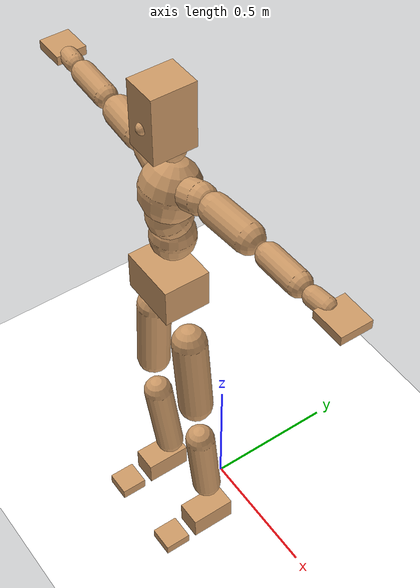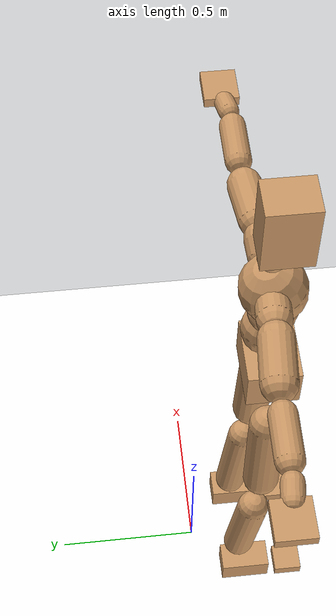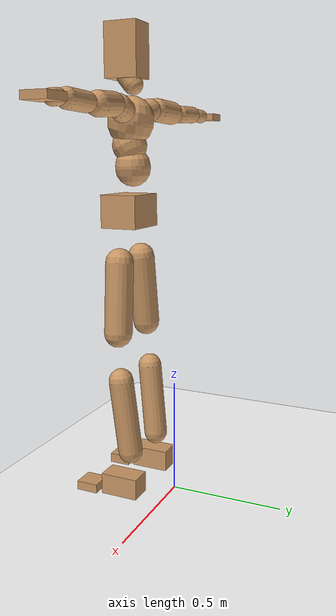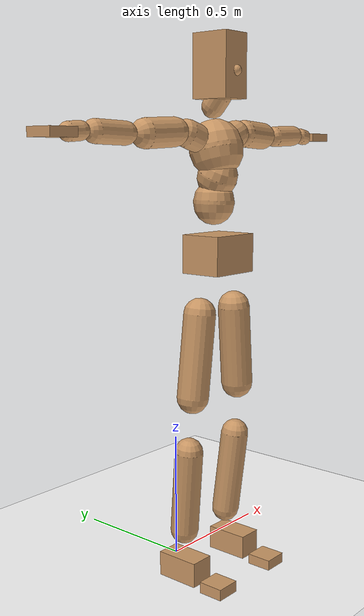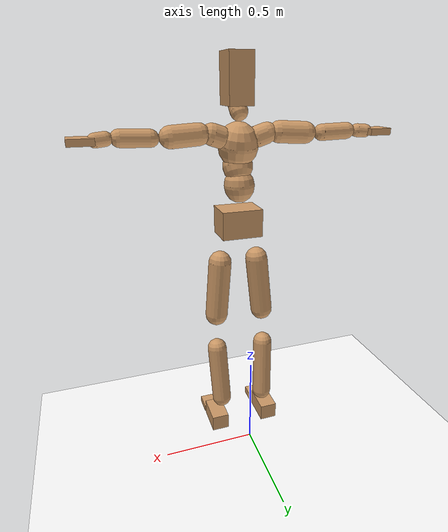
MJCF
<mujoco model="humanoid">
  <option integrator="implicitfast" />

  <visual>
    <global offwidth="1280" offheight="960" />
    <headlight active="1" ambient="0.34 0.34 0.34" diffuse="0.5 0.5 0.5" />
  </visual>

  <default>
    <joint damping="2" stiffness="2" armature="0.01" limited="true" solimplimit="0 .99 .01" />
    <geom condim="1" friction="0.7 0.005 0.0001" solimp=".99 .99 .003" solref="0.015 1" margin="0.001" rgba="0.8 0.6 .4 1" />
    <default class="smplcontact">
      <geom condim="3" friction="1. 0.005 0.0001" solref="0.015 1" solimp="0.98 0.98 0.001" priority="1" />
    </default>
    <default class="stiff_medium">
      <joint stiffness="10" />
    </default>
    <default class="stiff_medium_higher">
      <joint stiffness="50" />
    </default>
    <default class="stiff_high">
      <joint stiffness="100" />
    </default>
  </default>

  <asset>
    <texture type="skybox" builtin="gradient" rgb1="0.99 0.99 0.99" rgb2="0.608 0.828 0.892" width="100" />
    <texture builtin="flat" height="1278" mark="cross" markrgb="1 1 1" name="texgeom" random="0.01" rgb1="0.8 0.6 0.4" rgb2="0.8 0.6 0.4" type="cube" width="127" />
    <texture name="texplane" type="2d" builtin="checker" markrgb="1 1 1" rgb1="0.756 0.772 0.76" rgb2="0.6 0.6 0.6" width="100" height="100" />
    <material name="MatPlane" reflectance="0.5" texture="texplane" texrepeat="1 1" texuniform="true" />
    <material name="geom" texture="texgeom" texuniform="true" />
  </asset>

  <worldbody>
    <light name="tracking_light" pos="0 0 7" dir="0 0 -1" directional="true" cutoff="100" exponent="1" diffuse="1 1 1" specular="0.1 0.1 0.1" mode="trackcom" />
    <camera name="back" pos="0 3 2.4" xyaxes="-1 0 0 0 -1 2" mode="trackcom" />
    <camera name="side" pos="-3 0 2.4" xyaxes="0 -1 0 1 0 2" mode="trackcom" />
    <camera name="front_side" pos="-2.8 -2.8 0.8" xyaxes="0.5 -0.5 0 0.1 0.1 1" mode="trackcom" />
    <geom condim="3" name="floor" pos="0 0 0" rgba="1 1 1 1" size="100 100 .2" type="plane" material="MatPlane" />
    <body name="Pelvis" pos="-0.0018 -0.2233 1.27986" euler="90 0 0">
      <site name="Pelvis" size="0.01" />
      <freejoint name="Pelvis" />
      <geom type="box" pos="-0.0000 -0.0121 -0.0055" size="0.1069 0.0722 0.083" quat="1.0000 0.0000 0.0000 0.0000" density="3165.830099" name="Pelvis" />
      <body name="L_Hip" pos="0.0955625 -0.125675 -0.00935">
        <joint name="L_Hip_x" type="hinge" pos="0 0 0" axis="1 0 0" stiffness="17.19464815217392" range="-160.0 22.92" class="stiff_medium" damping="29.626266823599458" armature="0.022687051049198846"/>
        <joint name="L_Hip_y" type="hinge" pos="0 0 0" axis="0 1 0" stiffness="17.095245217391305" range="-70.0 70.0" class="stiff_medium" damping="16.759081040028263" armature="0.016429527259457143"/>
        <joint name="L_Hip_z" type="hinge" pos="0 0 0" axis="0 0 1" stiffness="17.111722391304347" range="-28.65 90.0" class="stiff_medium" damping="19.707086393727305" armature="0.02269609366308965"/>
        <geom type="capsule" density="2040.816327" fromto="0.0094875 -0.103125 -0.0012375 0.037675 -0.412775 -0.00495" size="0.0615" name="L_Hip" />
        <body name="L_Knee" pos="0.0471625 -0.5159 -0.0061875">
          <joint name="L_Knee_x" type="hinge" pos="0 0 0" axis="1 0 0" range="-5.16 171.89" damping="15.051360594298108" armature="0.021343797365827893" stiffness="3.316880717391304"/>
          <joint name="L_Knee_y" type="hinge" pos="0 0 0" axis="0 1 0" range="-4.58 6.88" damping="12.951808701017505" armature="0.015441578364462112" stiffness="3.3948389347826087"/>
          <joint name="L_Knee_z" type="hinge" pos="0 0 0" axis="0 0 1" range="-6.88 4.58" damping="15.016338430734729" armature="0.021384230246159514" stiffness="3.295220608695652"/>
          <geom type="capsule" density="1234.567901" fromto="-0.0037125 -0.10945 -0.0119625 -0.0149875 -0.4378 -0.048125" size="0.0541" name="L_Knee" />
          <body name="L_Ankle" pos="-0.0187 -0.54725 -0.0600875">
            <joint name="L_Ankle_x" type="hinge" pos="0 0 0" axis="1 0 0" range="-45.84 45.84" class="stiff_medium" damping="8.859849404560132" armature="0.015857944517404327" stiffness="13.750018586956523"/>
            <joint name="L_Ankle_y" type="hinge" pos="0 0 0" axis="0 1 0" range="-74.48 22.92" class="stiff_medium" damping="4.399379435502066" armature="0.015640018623433522" stiffness="13.750011630434784"/>
            <joint name="L_Ankle_z" type="hinge" pos="0 0 0" axis="0 0 1" range="-4.58 4.58" class="stiff_medium" damping="8.38783641411414" armature="0.014213292870694776" stiffness="13.75"/>
            <geom type="box" pos="0.0320375 -0.0328625 0.033275" size="0.0483 0.0464 0.085" quat="1.0000 0.0000 0.0000 0.0000" density="449.071558" name="L_Ankle" class="smplcontact" />
            <body name="L_Toe" pos="0.0363 -0.076725 0.164038">
              <joint name="L_Toe_x" type="hinge" pos="0 0 0" axis="1 0 0" range="-91.67 22.92" armature="0.013386048586151958" damping="2.7133607799891957" stiffness="2.75"/>
              <joint name="L_Toe_y" type="hinge" pos="0 0 0" axis="0 1 0" range="-4.58 4.58" armature="0.012385744586589299" damping="2.610011402776646" stiffness="2.75"/>
              <joint name="L_Toe_z" type="hinge" pos="0 0 0" axis="0 0 1" range="-4.58 4.58" armature="0.010363183740582555" damping="2.387415141386266" stiffness="2.75"/>
              <geom type="box" pos="-0.004125 0.0075625 0.0341" size="0.0478 0.02 0.0496" quat="1.0000 0.0000 0.0000 0.0000" density="423.206892" name="L_Toe" class="smplcontact" />
            </body>
          </body>
        </body>
      </body>
      <body name="R_Hip" pos="-0.0930875 -0.124437 -0.0059125">
        <joint name="R_Hip_x" type="hinge" pos="0 0 0" axis="1 0 0" stiffness="17.19464815217392" range="-160.0 22.92" class="stiff_medium" damping="29.626266823599458" armature="0.022687051049198846"/>
        <joint name="R_Hip_y" type="hinge" pos="0 0 0" axis="0 1 0" stiffness="17.095245217391305" range="-70.0 70.0" class="stiff_medium" damping="16.759081040028263" armature="0.016429527259457143"/>
        <joint name="R_Hip_z" type="hinge" pos="0 0 0" axis="0 0 1" stiffness="17.111722391304347" range="-90.0 28.65" class="stiff_medium" damping="19.707086393727305" armature="0.02269609366308965"/>
        <geom type="capsule" density="2040.816327" fromto="-0.0105875 -0.105188 -0.002475 -0.042075 -0.420887 -0.0097625" size="0.0606" name="R_Hip" />
        <body name="R_Knee" pos="-0.0526625 -0.526075 -0.0122375">
          <joint name="R_Knee_x" type="hinge" pos="0 0 0" axis="1 0 0" range="-5.16 171.89" damping="15.051360594298108" armature="0.021343797365827893" stiffness="3.316880717391304"/>
          <joint name="R_Knee_y" type="hinge" pos="0 0 0" axis="0 1 0" range="-6.88 4.58" damping="12.951808701017505" armature="0.015441578364462112" stiffness="3.3948389347826087"/>
          <joint name="R_Knee_z" type="hinge" pos="0 0 0" axis="0 0 1" range="-4.58 6.88" damping="15.016338430734729" armature="0.021384230246159514" stiffness="3.295220608695652"/>
          <geom type="capsule" density="1234.567901" fromto="0.0044 -0.109587 -0.0116875 0.017325 -0.438213 -0.046475" size="0.0541" name="R_Knee" />
          <body name="R_Ankle" pos="0.021725 -0.5478 -0.0581625">
            <joint name="R_Ankle_x" type="hinge" pos="0 0 0" axis="1 0 0" range="-45.84 45.84" class="stiff_medium" damping="8.859849404560132" armature="0.015857944517404327" stiffness="13.750018586956523"/>
            <joint name="R_Ankle_y" type="hinge" pos="0 0 0" axis="0 1 0" range="-22.92 74.48" class="stiff_medium" damping="4.399379435502066" armature="0.015640018623433522" stiffness="13.750011630434784"/>
            <joint name="R_Ankle_z" type="hinge" pos="0 0 0" axis="0 0 1" range="-4.58 4.58" class="stiff_medium" damping="8.38783641411414" armature="0.014213292870694776" stiffness="13.75"/>
            <geom type="box" pos="-0.02915 -0.023925 0.0352" size="0.0483 0.0478 0.0865" quat="1.0000 0.0000 0.0000 0.0000" density="434.700981" name="R_Ankle" class="smplcontact" />
            <body name="R_Toe" pos="-0.034925 -0.0661375 0.169538">
              <joint name="R_Toe_x" type="hinge" pos="0 0 0" axis="1 0 0" range="-91.67 22.92" armature="0.013386048586151958" damping="2.7133607799891957" stiffness="2.75"/>
              <joint name="R_Toe_y" type="hinge" pos="0 0 0" axis="0 1 0" range="-4.58 4.58" armature="0.012385744586589299" damping="2.610011402776646" stiffness="2.75"/>
              <joint name="R_Toe_z" type="hinge" pos="0 0 0" axis="0 0 1" range="-4.58 4.58" armature="0.010363183740582555" damping="2.387415141386266" stiffness="2.75"/>
              <geom type="box" pos="0.005775 0.0061875 0.0312125" size="0.0479 0.0216 0.0493" quat="1.0000 0.0000 0.0000 0.0000" density="407.384095" name="R_Toe" class="smplcontact" />
            </body>
          </body>
        </body>
      </body>
      <body name="Torso" pos="-0.0025 0.109 -0.0267">
        <joint name="Torso_x" type="hinge" pos="0 0 0" axis="1 0 0" range="-25.78 57.3" class="stiff_medium" damping="14.368828481187112" armature="0.009518929822817202" stiffness="9.63989"/>
        <joint name="Torso_y" type="hinge" pos="0 0 0" axis="0 1 0" range="-57.3 57.3" class="stiff_high" damping="17.03261776899825" armature="0.00748954170337838" stiffness="96.83839130434782"/>
        <joint name="Torso_z" type="hinge" pos="0 0 0" axis="0 0 1" range="-34.38 34.38" class="stiff_high" damping="18.535401574096333" armature="0.008825226346331873" stiffness="97.32359772727271"/>
        <geom type="capsule" density="2040.816327" fromto="0.0025 0.0608 0.0005 0.003 0.0743 0.0006" size="0.0769" name="Torso" />
        <body name="Spine" pos="0.0055 0.1352 0.0011">
          <joint name="Spine_x" type="hinge" pos="0 0 0" axis="1 0 0" stiffness="9.579701739130435" range="-25.78 57.3" class="stiff_medium" damping="14.264620493957937" armature="0.009440303089812757"/>
          <joint name="Spine_y" type="hinge" pos="0 0 0" axis="0 1 0" stiffness="9.580887826086956" range="-57.3 57.3" class="stiff_high" damping="6.768786682343357" armature="0.007471983870182018"/>
          <joint name="Spine_z" type="hinge" pos="0 0 0" axis="0 0 1" stiffness="19.031785652173912" range="-34.38 34.38" class="stiff_high" damping="10.69521045127154" armature="0.008347696197381863"/>
          <geom type="capsule" density="2040.816327" fromto="0.0007 0.0238 0.0114 0.0008 0.0291 0.014" size="0.0755" name="Spine" />
          <body name="Chest" pos="0.0015 0.0529 0.0254">
            <joint name="Chest_x" type="hinge" pos="0 0 0" axis="1 0 0" stiffness="9.409094782608697" range="-25.78 57.3" class="stiff_medium" damping="14.104409531967361" armature="0.009396788619791433"/>
            <joint name="Chest_y" type="hinge" pos="0 0 0" axis="0 1 0" stiffness="8.884800227272727" range="-57.3 57.3" class="stiff_high" damping="6.515670116194001" armature="0.007466043829259932"/>
            <joint name="Chest_z" type="hinge" pos="0 0 0" axis="0 0 1" stiffness="18.982618260869568" range="-34.38 34.38" class="stiff_high" damping="10.547007863759628" armature="0.008138979020284567"/>
            <geom type="capsule" density="2040.816327" fromto="-0.0009 0.0682 -0.0173 -0.001 0.0833 -0.0212" size="0.1002" name="Chest" />
            <body name="Neck" pos="-0.0028 0.2139 -0.0429">
              <joint name="Neck_x" type="hinge" pos="0 0 0" axis="1 0 0" range="-28.65 57.3" class="stiff_medium_higher" damping="10.0" armature="0.01" stiffness="50.0"/>
              <joint name="Neck_y" type="hinge" pos="0 0 0" axis="0 1 0" range="-40.11 40.11" class="stiff_medium_higher" damping="10.0" armature="0.010000000000000002" stiffness="50.0"/>
              <joint name="Neck_z" type="hinge" pos="0 0 0" axis="0 0 1" range="-40.11 40.11" class="stiff_medium_higher" damping="10.000000000000014" armature="0.01000000000000003" stiffness="50.0"/>
              <geom type="capsule" density="1000" fromto="0.001 0.013 0.0103 0.0041 0.052 0.0411" size="0.0436" name="Neck" />
              <body name="Head" pos="0.0052 0.065 0.0513">
                <joint name="Head_x" type="hinge" pos="0 0 0" axis="1 0 0" range="-28.65 57.3" class="stiff_medium_higher" damping="2.000000000000002" armature="0.010000000000000023" stiffness="50.0"/>
                <joint name="Head_y" type="hinge" pos="0 0 0" axis="0 1 0" range="-40.11 40.11" class="stiff_medium_higher" damping="2.0" armature="0.010000000000000002" stiffness="50.0"/>
                <joint name="Head_z" type="hinge" pos="0 0 0" axis="0 0 1" range="-40.11 40.11" class="stiff_medium_higher" damping="2.0000000000000058" armature="0.010000000000000061" stiffness="50.0"/>
                <geom type="box" pos="-0.0042 0.0876 -0.0116" size="0.0606 0.1154 0.076" quat="1.0000 0.0000 0.0000 0.0000" density="1018.069894" name="Head" />
                <geom type="capsule" name="nose" size="0.02 0.01" pos="0 0.07 0.05" quat="1 0 0 0" mass="0" contype="0" conaffinity="0" />
              </body>
            </body>
            <body name="L_Thorax" pos="0.069935 0.108009 -0.0302637">
              <joint name="L_Thorax_x" type="hinge" pos="0 0 0" axis="1 0 0" range="-10.89 4.58" class="stiff_medium_higher" damping="16.505477260399463" armature="0.008237289712880574" stiffness="41.34108260869564"/>
              <joint name="L_Thorax_y" type="hinge" pos="0 0 0" axis="0 1 0" range="-28.65 17.19" class="stiff_medium_higher" damping="15.614710169996354" armature="0.00739718175864292" stiffness="41.201362499999995"/>
              <joint name="L_Thorax_z" type="hinge" pos="0 0 0" axis="0 0 1" range="-31.51 40.11" class="stiff_medium_higher" damping="15.614286291485111" armature="0.0073964225804993" stiffness="41.203354347826085"/>
              <geom type="capsule" density="1000" fromto="0.0161525 0.00541375 -0.0015975 0.06461 0.021655 -0.00630125" size="0.0521" name="L_Thorax" />
              <body name="L_Shoulder" pos="0.0807625 0.0270687 -0.00789875">
                <joint name="L_Shoulder_x" type="hinge" pos="0 0 0" axis="1 0 0" range="-97.4 97.4" class="stiff_medium" damping="5.052350459499167" armature="0.008561219507331155" stiffness="8.282258913043478"/>
                <joint name="L_Shoulder_y" type="hinge" pos="0 0 0" axis="0 1 0" range="-108.86 80.21" class="stiff_medium" damping="4.696705326036949" armature="0.007424828192243076" stiffness="8.252731521739129"/>
                <joint name="L_Shoulder_z" type="hinge" pos="0 0 0" axis="0 0 1" range="-97.4 85.94" class="stiff_medium" damping="4.696194705652358" armature="0.007423822707357093" stiffness="8.252054673913044"/>
                <geom type="capsule" density="1000" fromto="0.0460612 -0.0023075 -0.00488125 0.184334 -0.0090525 -0.019525" size="0.0517" name="L_Shoulder" />
                <body name="L_Elbow" pos="0.230395 -0.01136 -0.0244062">
                  <joint name="L_Elbow_x" type="hinge" pos="0 0 0" axis="1 0 0" range="-17.19 4.58" damping="4.357834099746463" armature="0.009089595760700588" stiffness="1.6714246521739127"/>
                  <joint name="L_Elbow_y" type="hinge" pos="0 0 0" axis="0 1 0" range="-180.0 17.19" damping="3.9739810536272118" armature="0.007559999182253766" stiffness="1.6711668913043478"/>
                  <joint name="L_Elbow_z" type="hinge" pos="0 0 0" axis="0 0 1" range="-100.84 4.58" damping="3.9731711614276466" armature="0.0075547215269742085" stiffness="1.6716527826086958"/>
                  <geom type="capsule" density="1000" fromto="0.0441975 0.0015975 -0.0001775 0.176967 0.00639 -0.00079875" size="0.0405" name="L_Elbow" />
                  <body name="L_Wrist" pos="0.221165 0.0079875 -0.001065">
                    <joint name="L_Wrist_x" type="hinge" pos="0 0 0" axis="1 0 0" range="-180.0 22.92" armature="0.009268388983616758" damping="1.7956064308764201" stiffness="1.7393543043478261"/>
                    <joint name="L_Wrist_y" type="hinge" pos="0 0 0" axis="0 1 0" range="-17.19 17.19" armature="0.008039907338787651" damping="1.6695087244197115" stiffness="1.7333902391304346"/>
                    <joint name="L_Wrist_z" type="hinge" pos="0 0 0" axis="0 0 1" range="-22.92 22.92" armature="0.00797078323233518" damping="1.6634253394625034" stiffness="1.7357038695652176"/>
                    <geom type="capsule" density="1000" fromto="0.01491 -0.00142 -0.0026625 0.05964 -0.00576875 -0.01065" size="0.0318" name="L_Wrist" class="smplcontact" />
                    <body name="L_Hand" pos="0.07455 -0.0072775 -0.0132237">
                      <joint name="L_Hand_x" type="hinge" pos="0 0 0" axis="1 0 0" range="-17.19 17.19" armature="0.009907489981019743" damping="1.8754085016113422" stiffness="1.7749990434782612"/>
                      <joint name="L_Hand_y" type="hinge" pos="0 0 0" axis="0 1 0" range="-51.57 51.57" armature="0.008881214164335072" damping="1.7756208292662223" stiffness="1.7749990434782612"/>
                      <joint name="L_Hand_z" type="hinge" pos="0 0 0" axis="0 0 1" range="-91.67 91.67" armature="0.00860764640211085" damping="1.7480597104275561" stiffness="1.7749990000000002"/>
                      <geom type="box" pos="0.0437537 0.0008875 -0.0051475" size="0.0585 0.0158 0.0538" quat="1.0000 0.0000 0.0000 0.0000" density="400.552564" name="L_Hand" class="smplcontact" />
                    </body>
                  </body>
                </body>
              </body>
            </body>
            <body name="R_Thorax" pos="-0.0725975 0.105435 -0.0342575">
              <joint name="R_Thorax_x" type="hinge" pos="0 0 0" axis="1 0 0" range="-10.89 4.58" class="stiff_medium_higher" damping="16.505477260399463" armature="0.008237289712880574" stiffness="41.34108260869564"/>
              <joint name="R_Thorax_y" type="hinge" pos="0 0 0" axis="0 1 0" range="-17.19 28.65" class="stiff_medium_higher" damping="15.614710169996354" armature="0.00739718175864292" stiffness="41.201362499999995"/>
              <joint name="R_Thorax_z" type="hinge" pos="0 0 0" axis="0 0 1" range="-40.11 31.51" class="stiff_medium_higher" damping="15.614286291485111" armature="0.0073964225804993" stiffness="41.203354347826085"/>
              <geom type="capsule" density="1000" fromto="-0.01704 0.00576875 -0.0015975 -0.06816 0.023075 -0.00647875" size="0.0511" name="R_Thorax" />
              <body name="R_Shoulder" pos="-0.0852 0.0289325 -0.00807625">
                <joint name="R_Shoulder_x" type="hinge" pos="0 0 0" axis="1 0 0" range="-97.4 97.4" class="stiff_medium" damping="5.052350459499167" armature="0.008561219507331155" stiffness="8.282258913043478"/>
                <joint name="R_Shoulder_y" type="hinge" pos="0 0 0" axis="0 1 0" range="-80.21 108.86" class="stiff_medium" damping="4.696705326036949" armature="0.007424828192243076" stiffness="8.252731521739129"/>
                <joint name="R_Shoulder_z" type="hinge" pos="0 0 0" axis="0 0 1" range="-85.94 97.4" class="stiff_medium" damping="4.696194705652358" armature="0.007423822707357093" stiffness="8.252054673913044"/>
                <geom type="capsule" density="1000" fromto="-0.0449963 -0.00239625 -0.00381625 -0.180163 -0.00949625 -0.0151763" size="0.0531" name="R_Shoulder" />
                <body name="R_Elbow" pos="-0.225159 -0.0118037 -0.0189925">
                  <joint name="R_Elbow_x" type="hinge" pos="0 0 0" axis="1 0 0" range="-17.19 4.58" damping="4.357834099746463" armature="0.009089595760700588" stiffness="1.6714246521739127"/>
                  <joint name="R_Elbow_y" type="hinge" pos="0 0 0" axis="0 1 0" range="-17.19 180.0" damping="3.9739810536272118" armature="0.007559999182253766" stiffness="1.6711668913043478"/>
                  <joint name="R_Elbow_z" type="hinge" pos="0 0 0" axis="0 0 1" range="-4.58 100.84" damping="3.9731711614276466" armature="0.0075547215269742085" stiffness="1.6716527826086958"/>
                  <geom type="capsule" density="1000" fromto="-0.0453512 0.00142 -0.00097625 -0.181227 0.0055025 -0.003905" size="0.0408" name="R_Elbow" />
                  <body name="R_Wrist" pos="-0.226579 0.0069225 -0.00497">
                    <joint name="R_Wrist_x" type="hinge" pos="0 0 0" axis="1 0 0" range="-180.0 22.92" armature="0.009268388983616758" damping="1.7956064308764201" stiffness="1.7393543043478261"/>
                    <joint name="R_Wrist_y" type="hinge" pos="0 0 0" axis="0 1 0" range="-17.19 17.19" armature="0.008039907338787651" damping="1.6695087244197115" stiffness="1.7333902391304346"/>
                    <joint name="R_Wrist_z" type="hinge" pos="0 0 0" axis="0 0 1" range="-22.92 22.92" armature="0.00797078323233518" damping="1.6634253394625034" stiffness="1.7357038695652176"/>
                    <geom type="capsule" density="1000" fromto="-0.0149987 -0.001065 -0.00186375 -0.0600837 -0.00434875 -0.00736625" size="0.0326" name="R_Wrist" class="smplcontact" />
                    <body name="R_Hand" pos="-0.0750825 -0.00541375 -0.00914125">
                      <joint name="R_Hand_x" type="hinge" pos="0 0 0" axis="1 0 0" range="-17.19 17.19" armature="0.009907489981019743" damping="1.8754085016113422" stiffness="1.7749990434782612"/>
                      <joint name="R_Hand_y" type="hinge" pos="0 0 0" axis="0 1 0" range="-51.57 51.57" armature="0.008881214164335072" damping="1.7756208292662223" stiffness="1.7749990434782612"/>
                      <joint name="R_Hand_z" type="hinge" pos="0 0 0" axis="0 0 1" range="-91.67 91.67" armature="0.00860764640211085" damping="1.7480597104275561" stiffness="1.7749990000000002"/>
                      <geom type="box" pos="-0.0410025 -0.00079875 -0.00701125" size="0.0569 0.0164 0.0546" quat="1.0000 0.0000 0.0000 0.0000" density="403.679611" name="R_Hand" class="smplcontact" />
                    </body>
                  </body>
                </body>
              </body>
            </body>
          </body>
        </body>
      </body>
    </body>
  </worldbody>
  <actuator>
    <general name="L_Hip_x" joint="L_Hip_x" biastype="affine" gainprm="494.0539355695039" biasprm="-370.2433494853903 -309.5036667391305 -3.9501689098132613" ctrllimited="true" ctrlrange="-1 1" forcerange="-619.007333478261 619.007333478261" />
    <general name="L_Hip_y" joint="L_Hip_y" biastype="affine" gainprm="375.944077503908" biasprm="0.0 -307.71441391304353 -3.3518162080056526" ctrllimited="true" ctrlrange="-1 1" forcerange="-615.4288278260871 615.4288278260871" />
    <general name="L_Hip_z" joint="L_Hip_z" biastype="affine" gainprm="318.91969898728996" biasprm="164.90285320581742 -308.0110030434783 -3.9414172787454613" ctrllimited="true" ctrlrange="-1 1" forcerange="-616.0220060869566 616.0220060869566" />
    <general name="L_Knee_x" joint="L_Knee_x" biastype="affine" gainprm="461.2280017867971" biasprm="434.34365850275447 -298.5192645652174 -3.762840148574527" ctrllimited="true" ctrlrange="-1 1" forcerange="-597.0385291304348 597.0385291304348" />
    <general name="L_Knee_y" joint="L_Knee_y" biastype="affine" gainprm="30.555801030120385" biasprm="6.132490608139344 -305.5355041304348 -3.2379521752543763" ctrllimited="true" ctrlrange="-1 1" forcerange="-611.0710082608696 611.0710082608696" />
    <general name="L_Knee_z" joint="L_Knee_z" biastype="affine" gainprm="29.659170053115986" biasprm="-5.95253849233567 -296.5698547826087 -3.7540846076836822" ctrllimited="true" ctrlrange="-1 1" forcerange="-593.1397095652173 593.1397095652173" />
    <general name="L_Ankle_x" joint="L_Ankle_x" biastype="affine" gainprm="99.00742631382712" biasprm="0.0 -123.7501672826087 -2.9532831348533772" ctrllimited="true" ctrlrange="-1 1" forcerange="-247.5003345652174 247.5003345652174" />
    <general name="L_Ankle_y" joint="L_Ankle_y" biastype="affine" gainprm="105.18453800324872" biasprm="-55.68084989165815 -123.75010467391306 -2.932919623668044" ctrllimited="true" ctrlrange="-1 1" forcerange="-247.50020934782611 247.50020934782611" />
    <general name="L_Ankle_z" joint="L_Ankle_z" biastype="affine" gainprm="9.89208986799086" biasprm="0.0 -123.75 -2.79594547137138" ctrllimited="true" ctrlrange="-1 1" forcerange="-247.5 247.5" />
    <general name="L_Toe_x" joint="L_Toe_x" biastype="affine" gainprm="98.99865309808496" biasprm="-59.39573610693202 -99.0 -1.0853443119956783" ctrllimited="true" ctrlrange="-1 1" forcerange="-198.0 198.0" />
    <general name="L_Toe_y" joint="L_Toe_y" biastype="affine" gainprm="7.913671894392689" biasprm="0.0 -99.0 -1.0440045611106583" ctrllimited="true" ctrlrange="-1 1" forcerange="-198.0 198.0" />
    <general name="L_Toe_z" joint="L_Toe_z" biastype="affine" gainprm="7.913671894392689" biasprm="0.0 -99.0 -0.9549660565545065" ctrllimited="true" ctrlrange="-1 1" forcerange="-198.0 198.0" />
    <general name="R_Hip_x" joint="R_Hip_x" biastype="affine" gainprm="494.0539355695039" biasprm="-370.2433494853903 -309.5036667391305 -3.9501689098132613" ctrllimited="true" ctrlrange="-1 1" forcerange="-619.007333478261 619.007333478261" />
    <general name="R_Hip_y" joint="R_Hip_y" biastype="affine" gainprm="375.944077503908" biasprm="0.0 -307.71441391304353 -3.3518162080056526" ctrllimited="true" ctrlrange="-1 1" forcerange="-615.4288278260871 615.4288278260871" />
    <general name="R_Hip_z" joint="R_Hip_z" biastype="affine" gainprm="318.91969898728996" biasprm="-164.90285320581742 -308.0110030434783 -3.9414172787454613" ctrllimited="true" ctrlrange="-1 1" forcerange="-616.0220060869566 616.0220060869566" />
    <general name="R_Knee_x" joint="R_Knee_x" biastype="affine" gainprm="461.2280017867971" biasprm="434.34365850275447 -298.5192645652174 -3.762840148574527" ctrllimited="true" ctrlrange="-1 1" forcerange="-597.0385291304348 597.0385291304348" />
    <general name="R_Knee_y" joint="R_Knee_y" biastype="affine" gainprm="30.555801030120385" biasprm="-6.132490608139344 -305.5355041304348 -3.2379521752543763" ctrllimited="true" ctrlrange="-1 1" forcerange="-611.0710082608696 611.0710082608696" />
    <general name="R_Knee_z" joint="R_Knee_z" biastype="affine" gainprm="29.659170053115986" biasprm="5.95253849233567 -296.5698547826087 -3.7540846076836822" ctrllimited="true" ctrlrange="-1 1" forcerange="-593.1397095652173 593.1397095652173" />
    <general name="R_Ankle_x" joint="R_Ankle_x" biastype="affine" gainprm="99.00742631382712" biasprm="0.0 -123.7501672826087 -2.9532831348533772" ctrllimited="true" ctrlrange="-1 1" forcerange="-247.5003345652174 247.5003345652174" />
    <general name="R_Ankle_y" joint="R_Ankle_y" biastype="affine" gainprm="105.18453800324872" biasprm="55.68084989165815 -123.75010467391306 -2.932919623668044" ctrllimited="true" ctrlrange="-1 1" forcerange="-247.50020934782611 247.50020934782611" />
    <general name="R_Ankle_z" joint="R_Ankle_z" biastype="affine" gainprm="9.89208986799086" biasprm="0.0 -123.75 -2.79594547137138" ctrllimited="true" ctrlrange="-1 1" forcerange="-247.5 247.5" />
    <general name="R_Toe_x" joint="R_Toe_x" biastype="affine" gainprm="98.99865309808496" biasprm="-59.39573610693202 -99.0 -1.0853443119956783" ctrllimited="true" ctrlrange="-1 1" forcerange="-198.0 198.0" />
    <general name="R_Toe_y" joint="R_Toe_y" biastype="affine" gainprm="7.913671894392689" biasprm="0.0 -99.0 -1.0440045611106583" ctrllimited="true" ctrlrange="-1 1" forcerange="-198.0 198.0" />
    <general name="R_Toe_z" joint="R_Toe_z" biastype="affine" gainprm="7.913671894392689" biasprm="0.0 -99.0 -0.9549660565545065" ctrllimited="true" ctrlrange="-1 1" forcerange="-198.0 198.0" />
    <general name="Torso_x" joint="Torso_x" biastype="affine" gainprm="167.73634665718473" biasprm="63.63805544817599 -231.35735999999997 -3.83168759498323" ctrllimited="true" ctrlrange="-1 1" forcerange="-347.03603999999996 347.03603999999996" />
    <general name="Torso_y" joint="Torso_y" biastype="affine" gainprm="232.4292589322953" biasprm="0.0 -232.41213913043478 -3.40652355379965" ctrllimited="true" ctrlrange="-1 1" forcerange="-348.6182086956522 348.6182086956522" />
    <general name="Torso_z" joint="Torso_z" biastype="affine" gainprm="140.15630407540152" biasprm="0.0 -233.5766345454545 -3.7070803148192666" ctrllimited="true" ctrlrange="-1 1" forcerange="-350.3649518181818 350.3649518181818" />
    <general name="Spine_x" joint="Spine_x" biastype="affine" gainprm="166.68905680326418" biasprm="63.24072063600006 -229.91284173913044 -3.8038987983887833" ctrllimited="true" ctrlrange="-1 1" forcerange="-344.86926260869564 344.86926260869564" />
    <general name="Spine_y" joint="Spine_y" biastype="affine" gainprm="229.95824562307234" biasprm="0.0 -229.94130782608693 -3.3843933411716787" ctrllimited="true" ctrlrange="-1 1" forcerange="-344.9119617391304 344.9119617391304" />
    <general name="Spine_z" joint="Spine_z" biastype="affine" gainprm="137.03895043208345" biasprm="0.0 -228.38142782608696 -3.5650701504238467" ctrllimited="true" ctrlrange="-1 1" forcerange="-342.5721417391305 342.5721417391305" />
    <general name="Chest_x" joint="Chest_x" biastype="affine" gainprm="163.72045575063208" biasprm="62.1144531206057 -225.8182747826087 -3.7611758751912965" ctrllimited="true" ctrlrange="-1 1" forcerange="-338.7274121739131 338.7274121739131" />
    <general name="Chest_y" joint="Chest_y" biastype="affine" gainprm="213.25091265676275" biasprm="0.0 -213.23520545454548 -3.2578350580970006" ctrllimited="true" ctrlrange="-1 1" forcerange="-319.8528081818182 319.8528081818182" />
    <general name="Chest_z" joint="Chest_z" biastype="affine" gainprm="136.68491913817482" biasprm="0.0 -227.7914191304348 -3.5156692879198763" ctrllimited="true" ctrlrange="-1 1" forcerange="-341.68712869565223 341.68712869565223" />
    <general name="Neck_x" joint="Neck_x" biastype="affine" gainprm="27.00198885760427" biasprm="9.000662952534757 -36.0 -0.8" ctrllimited="true" ctrlrange="-1 1" forcerange="-72.0 72.0" />
    <general name="Neck_y" joint="Neck_y" biastype="affine" gainprm="25.20185626709732" biasprm="0.0 -36.0 -0.8" ctrllimited="true" ctrlrange="-1 1" forcerange="-72.0 72.0" />
    <general name="Neck_z" joint="Neck_z" biastype="affine" gainprm="25.20185626709732" biasprm="0.0 -36.0 -0.8000000000000012" ctrllimited="true" ctrlrange="-1 1" forcerange="-72.0 72.0" />
    <general name="Head_x" joint="Head_x" biastype="affine" gainprm="18.001325905069514" biasprm="6.000441968356505 -24.0 -0.8000000000000009" ctrllimited="true" ctrlrange="-1 1" forcerange="-48.0 48.0" />
    <general name="Head_y" joint="Head_y" biastype="affine" gainprm="16.801237511398213" biasprm="0.0 -24.0 -0.8" ctrllimited="true" ctrlrange="-1 1" forcerange="-48.0 48.0" />
    <general name="Head_z" joint="Head_z" biastype="affine" gainprm="16.801237511398213" biasprm="0.0 -24.0 -0.8000000000000024" ctrllimited="true" ctrlrange="-1 1" forcerange="-48.0 48.0" />
    <general name="L_Thorax_x" joint="L_Thorax_x" biastype="affine" gainprm="13.394631577926136" biasprm="-5.463485795521264 -99.21859826086956 -1.320438180831957" ctrllimited="true" ctrlrange="-1 1" forcerange="-198.4371965217391 198.4371965217391" />
    <general name="L_Thorax_y" joint="L_Thorax_y" biastype="affine" gainprm="39.55622155175517" biasprm="-9.889055387938793 -98.88326999999998 -1.2491768135997083" ctrllimited="true" ctrlrange="-1 1" forcerange="-197.76653999999996 197.76653999999996" />
    <general name="L_Thorax_z" joint="L_Thorax_z" biastype="affine" gainprm="61.80526936126262" biasprm="7.421464905150216 -98.88805043478261 -1.249142903318809" ctrllimited="true" ctrlrange="-1 1" forcerange="-197.77610086956523 197.77610086956523" />
    <general name="L_Shoulder_x" joint="L_Shoulder_x" biastype="affine" gainprm="67.58127247648262" biasprm="0.0 -39.7548427826087 -1.3472934558664447" ctrllimited="true" ctrlrange="-1 1" forcerange="-79.5096855652174 79.5096855652174" />
    <general name="L_Shoulder_y" joint="L_Shoulder_y" biastype="affine" gainprm="65.359534488949" biasprm="-9.904007315324423 -39.613111304347825 -1.2524547536098531" ctrllimited="true" ctrlrange="-1 1" forcerange="-79.22622260869565 79.22622260869565" />
    <general name="L_Shoulder_z" joint="L_Shoulder_z" biastype="affine" gainprm="63.37353501870846" biasprm="-3.9612780152416307 -39.609862434782606 -1.2523185881739622" ctrllimited="true" ctrlrange="-1 1" forcerange="-79.21972486956521 79.21972486956521" />
    <general name="L_Elbow_x" joint="L_Elbow_x" biastype="affine" gainprm="11.431286383865702" biasprm="-6.6214295498643345 -60.17128747826086 -0.6972534559594341" ctrllimited="true" ctrlrange="-1 1" forcerange="-120.34257495652172 120.34257495652172" />
    <general name="L_Elbow_y" joint="L_Elbow_y" biastype="affine" gainprm="103.52722727123559" biasprm="-85.47729535995674 -60.16200808695652 -0.635836968580354" ctrllimited="true" ctrlrange="-1 1" forcerange="-120.32401617391304 120.32401617391304" />
    <general name="L_Elbow_z" joint="L_Elbow_z" biastype="affine" gainprm="55.36291645081259" biasprm="-50.55240312611669 -60.17950017391305 -0.6357073858284235" ctrllimited="true" ctrlrange="-1 1" forcerange="-120.3590003478261 120.3590003478261" />
    <general name="L_Wrist_x" joint="L_Wrist_x" biastype="affine" gainprm="18.480407026716794" biasprm="-14.3056492004567 -10.436125826086958 -0.7182425723505681" ctrllimited="true" ctrlrange="-1 1" forcerange="-20.872251652173915 20.872251652173915" />
    <general name="L_Wrist_y" joint="L_Wrist_y" biastype="affine" gainprm="3.1203322615253337" biasprm="0.0 -10.400341434782607 -0.6678034897678846" ctrllimited="true" ctrlrange="-1 1" forcerange="-20.800682869565215 20.800682869565215" />
    <general name="L_Wrist_z" joint="L_Wrist_z" biastype="affine" gainprm="4.165996137431168" biasprm="0.0 -10.414223217391307 -0.6653701357850014" ctrllimited="true" ctrlrange="-1 1" forcerange="-20.828446434782613 20.828446434782613" />
    <general name="L_Hand_x" joint="L_Hand_x" biastype="affine" gainprm="3.195233626283884" biasprm="0.0 -10.649994260869567 -0.7501634006445369" ctrllimited="true" ctrlrange="-1 1" forcerange="-21.299988521739134 21.299988521739134" />
    <general name="L_Hand_y" joint="L_Hand_y" biastype="affine" gainprm="9.58570087885165" biasprm="0.0 -10.649994260869567 -0.7102483317064889" ctrllimited="true" ctrlrange="-1 1" forcerange="-21.299988521739134 21.299988521739134" />
    <general name="L_Hand_z" joint="L_Hand_z" biastype="affine" gainprm="17.03938681481915" biasprm="0.0 -10.649994000000001 -0.6992238841710225" ctrllimited="true" ctrlrange="-1 1" forcerange="-21.299988000000003 21.299988000000003" />
    <general name="R_Thorax_x" joint="R_Thorax_x" biastype="affine" gainprm="13.394631577926136" biasprm="-5.463485795521264 -99.21859826086956 -1.320438180831957" ctrllimited="true" ctrlrange="-1 1" forcerange="-198.4371965217391 198.4371965217391" />
    <general name="R_Thorax_y" joint="R_Thorax_y" biastype="affine" gainprm="39.55622155175517" biasprm="9.889055387938788 -98.88326999999998 -1.2491768135997083" ctrllimited="true" ctrlrange="-1 1" forcerange="-197.76653999999996 197.76653999999996" />
    <general name="R_Thorax_z" joint="R_Thorax_z" biastype="affine" gainprm="61.80526936126262" biasprm="-7.421464905150216 -98.88805043478261 -1.249142903318809" ctrllimited="true" ctrlrange="-1 1" forcerange="-197.77610086956523 197.77610086956523" />
    <general name="R_Shoulder_x" joint="R_Shoulder_x" biastype="affine" gainprm="67.58127247648262" biasprm="0.0 -39.7548427826087 -1.3472934558664447" ctrllimited="true" ctrlrange="-1 1" forcerange="-79.5096855652174 79.5096855652174" />
    <general name="R_Shoulder_y" joint="R_Shoulder_y" biastype="affine" gainprm="65.359534488949" biasprm="9.904007315324423 -39.613111304347825 -1.2524547536098531" ctrllimited="true" ctrlrange="-1 1" forcerange="-79.22622260869565 79.22622260869565" />
    <general name="R_Shoulder_z" joint="R_Shoulder_z" biastype="affine" gainprm="63.37353501870846" biasprm="3.961278015241622 -39.609862434782606 -1.2523185881739622" ctrllimited="true" ctrlrange="-1 1" forcerange="-79.21972486956521 79.21972486956521" />
    <general name="R_Elbow_x" joint="R_Elbow_x" biastype="affine" gainprm="11.431286383865702" biasprm="-6.6214295498643345 -60.17128747826086 -0.6972534559594341" ctrllimited="true" ctrlrange="-1 1" forcerange="-120.34257495652172 120.34257495652172" />
    <general name="R_Elbow_y" joint="R_Elbow_y" biastype="affine" gainprm="103.52722727123559" biasprm="85.47729535995674 -60.16200808695652 -0.635836968580354" ctrllimited="true" ctrlrange="-1 1" forcerange="-120.32401617391304 120.32401617391304" />
    <general name="R_Elbow_z" joint="R_Elbow_z" biastype="affine" gainprm="55.36291645081259" biasprm="50.55240312611668 -60.17950017391305 -0.6357073858284235" ctrllimited="true" ctrlrange="-1 1" forcerange="-120.3590003478261 120.3590003478261" />
    <general name="R_Wrist_x" joint="R_Wrist_x" biastype="affine" gainprm="18.480407026716794" biasprm="-14.3056492004567 -10.436125826086958 -0.7182425723505681" ctrllimited="true" ctrlrange="-1 1" forcerange="-20.872251652173915 20.872251652173915" />
    <general name="R_Wrist_y" joint="R_Wrist_y" biastype="affine" gainprm="3.1203322615253337" biasprm="0.0 -10.400341434782607 -0.6678034897678846" ctrllimited="true" ctrlrange="-1 1" forcerange="-20.800682869565215 20.800682869565215" />
    <general name="R_Wrist_z" joint="R_Wrist_z" biastype="affine" gainprm="4.165996137431168" biasprm="0.0 -10.414223217391307 -0.6653701357850014" ctrllimited="true" ctrlrange="-1 1" forcerange="-20.828446434782613 20.828446434782613" />
    <general name="R_Hand_x" joint="R_Hand_x" biastype="affine" gainprm="3.195233626283884" biasprm="0.0 -10.649994260869567 -0.7501634006445369" ctrllimited="true" ctrlrange="-1 1" forcerange="-21.299988521739134 21.299988521739134" />
    <general name="R_Hand_y" joint="R_Hand_y" biastype="affine" gainprm="9.58570087885165" biasprm="0.0 -10.649994260869567 -0.7102483317064889" ctrllimited="true" ctrlrange="-1 1" forcerange="-21.299988521739134 21.299988521739134" />
    <general name="R_Hand_z" joint="R_Hand_z" biastype="affine" gainprm="17.03938681481915" biasprm="0.0 -10.649994000000001 -0.6992238841710225" ctrllimited="true" ctrlrange="-1 1" forcerange="-21.299988000000003 21.299988000000003" />
  </actuator>
  <contact>
    <exclude body1="Torso" body2="Chest" />
    <exclude body1="Head" body2="Chest" />
    <exclude body1="R_Knee" body2="R_Toe" />
    <exclude body1="R_Knee" body2="L_Ankle" />
    <exclude body1="R_Knee" body2="L_Toe" />
    <exclude body1="L_Knee" body2="L_Toe" />
    <exclude body1="L_Knee" body2="R_Ankle" />
    <exclude body1="L_Knee" body2="R_Toe" />
    <exclude body1="L_Shoulder" body2="Chest" />
    <exclude body1="R_Shoulder" body2="Chest" />
  </contact>
  <sensor>
    <framelinvel name="sensor_Pelvis_framelinvel" objtype="xbody" objname="Pelvis" />
    <framelinvel name="sensor_L_Hip_framelinvel" objtype="xbody" objname="L_Hip" />
    <framelinvel name="sensor_L_Knee_framelinvel" objtype="xbody" objname="L_Knee" />
    <framelinvel name="sensor_L_Ankle_framelinvel" objtype="xbody" objname="L_Ankle" />
    <framelinvel name="sensor_L_Toe_framelinvel" objtype="xbody" objname="L_Toe" />
    <framelinvel name="sensor_R_Hip_framelinvel" objtype="xbody" objname="R_Hip" />
    <framelinvel name="sensor_R_Knee_framelinvel" objtype="xbody" objname="R_Knee" />
    <framelinvel name="sensor_R_Ankle_framelinvel" objtype="xbody" objname="R_Ankle" />
    <framelinvel name="sensor_R_Toe_framelinvel" objtype="xbody" objname="R_Toe" />
    <framelinvel name="sensor_Torso_framelinvel" objtype="xbody" objname="Torso" />
    <framelinvel name="sensor_Spine_framelinvel" objtype="xbody" objname="Spine" />
    <framelinvel name="sensor_Chest_framelinvel" objtype="xbody" objname="Chest" />
    <framelinvel name="sensor_Neck_framelinvel" objtype="xbody" objname="Neck" />
    <framelinvel name="sensor_Head_framelinvel" objtype="xbody" objname="Head" />
    <framelinvel name="sensor_L_Thorax_framelinvel" objtype="xbody" objname="L_Thorax" />
    <framelinvel name="sensor_L_Shoulder_framelinvel" objtype="xbody" objname="L_Shoulder" />
    <framelinvel name="sensor_L_Elbow_framelinvel" objtype="xbody" objname="L_Elbow" />
    <framelinvel name="sensor_L_Wrist_framelinvel" objtype="xbody" objname="L_Wrist" />
    <framelinvel name="sensor_L_Hand_framelinvel" objtype="xbody" objname="L_Hand" />
    <framelinvel name="sensor_R_Thorax_framelinvel" objtype="xbody" objname="R_Thorax" />
    <framelinvel name="sensor_R_Shoulder_framelinvel" objtype="xbody" objname="R_Shoulder" />
    <framelinvel name="sensor_R_Elbow_framelinvel" objtype="xbody" objname="R_Elbow" />
    <framelinvel name="sensor_R_Wrist_framelinvel" objtype="xbody" objname="R_Wrist" />
    <framelinvel name="sensor_R_Hand_framelinvel" objtype="xbody" objname="R_Hand" />
    <frameangvel name="sensor_Pelvis_frameangvel" objtype="xbody" objname="Pelvis" />
    <frameangvel name="sensor_L_Hip_frameangvel" objtype="xbody" objname="L_Hip" />
    <frameangvel name="sensor_L_Knee_frameangvel" objtype="xbody" objname="L_Knee" />
    <frameangvel name="sensor_L_Ankle_frameangvel" objtype="xbody" objname="L_Ankle" />
    <frameangvel name="sensor_L_Toe_frameangvel" objtype="xbody" objname="L_Toe" />
    <frameangvel name="sensor_R_Hip_frameangvel" objtype="xbody" objname="R_Hip" />
    <frameangvel name="sensor_R_Knee_frameangvel" objtype="xbody" objname="R_Knee" />
    <frameangvel name="sensor_R_Ankle_frameangvel" objtype="xbody" objname="R_Ankle" />
    <frameangvel name="sensor_R_Toe_frameangvel" objtype="xbody" objname="R_Toe" />
    <frameangvel name="sensor_Torso_frameangvel" objtype="xbody" objname="Torso" />
    <frameangvel name="sensor_Spine_frameangvel" objtype="xbody" objname="Spine" />
    <frameangvel name="sensor_Chest_frameangvel" objtype="xbody" objname="Chest" />
    <frameangvel name="sensor_Neck_frameangvel" objtype="xbody" objname="Neck" />
    <frameangvel name="sensor_Head_frameangvel" objtype="xbody" objname="Head" />
    <frameangvel name="sensor_L_Thorax_frameangvel" objtype="xbody" objname="L_Thorax" />
    <frameangvel name="sensor_L_Shoulder_frameangvel" objtype="xbody" objname="L_Shoulder" />
    <frameangvel name="sensor_L_Elbow_frameangvel" objtype="xbody" objname="L_Elbow" />
    <frameangvel name="sensor_L_Wrist_frameangvel" objtype="xbody" objname="L_Wrist" />
    <frameangvel name="sensor_L_Hand_frameangvel" objtype="xbody" objname="L_Hand" />
    <frameangvel name="sensor_R_Thorax_frameangvel" objtype="xbody" objname="R_Thorax" />
    <frameangvel name="sensor_R_Shoulder_frameangvel" objtype="xbody" objname="R_Shoulder" />
    <frameangvel name="sensor_R_Elbow_frameangvel" objtype="xbody" objname="R_Elbow" />
    <frameangvel name="sensor_R_Wrist_frameangvel" objtype="xbody" objname="R_Wrist" />
    <frameangvel name="sensor_R_Hand_frameangvel" objtype="xbody" objname="R_Hand" />
    <subtreelinvel name="Chest_subtreelinvel" body="Chest" />
    <gyro name="Pelvis_gyro" site="Pelvis" />
  </sensor>
</mujoco>
